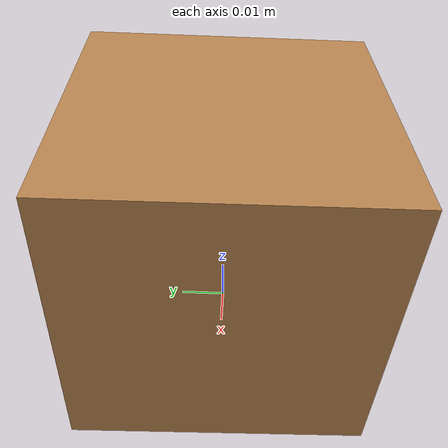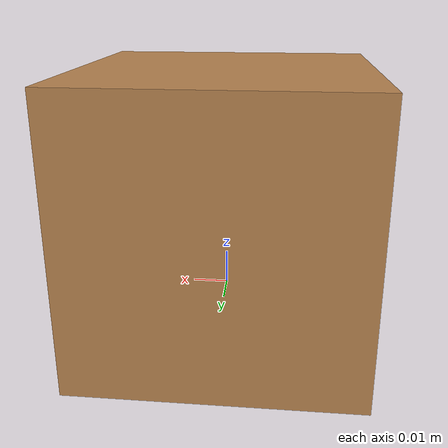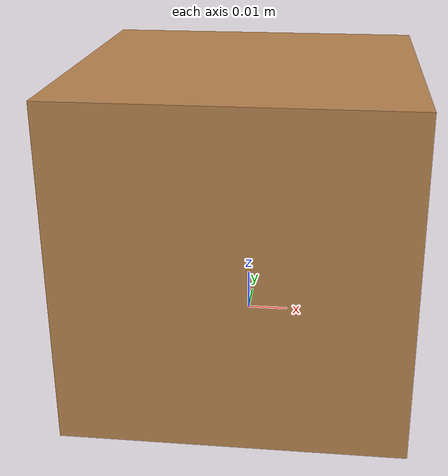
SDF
<?xml version='1.0'?>
<sdf version='1.6'>
  <model name='wood_cube_8cm'>
    <link name='link'>
      <pose frame=''>-0 -0 0.025 0 -0 0</pose>
      <inertial>
        <mass>0.0565</mass>
        <inertia>
          <ixx>2.354e-05</ixx>
          <ixy>0</ixy>
          <ixz>0</ixz>
          <iyy>2.354e-05</iyy>
          <iyz>0</iyz>
          <izz>2.354e-05</izz>
        </inertia>
        <pose frame=''>0 0 0 0 -0 0</pose>
      </inertial>
      <self_collide>0</self_collide>
      <kinematic>0</kinematic>
      <gravity>1</gravity>
      <visual name='visual'>
        <geometry>
          <box>
            <size>0.08 0.08 0.08</size>
          </box>
        </geometry>
        <material>
          <script>
            <uri>file://media/materials/scripts/gazebo.material</uri>
            <name>Gazebo/Wood</name>
          </script>
          <ambient>1 1 1 1</ambient>
          <diffuse>1 1 1 1</diffuse>
          <specular>0.2 0.2 0.2 1</specular>
          <emissive>0 0 0 1</emissive>
          <shader type='vertex'>
            <normal_map>__default__</normal_map>
          </shader>
        </material>
        <pose frame=''>0 0 0 0 -0 0</pose>
        <cast_shadows>1</cast_shadows>
        <transparency>0</transparency>
      </visual>
      <collision name='collision'>
        <laser_retro>0</laser_retro>
        <max_contacts>10</max_contacts>
        <pose frame=''>0 0 0 0 -0 0</pose>
        <geometry>
          <box>
            <size>0.08 0.08 0.08</size>
          </box>
        </geometry>
        <surface>
          <friction>
            <ode>
              <mu>2</mu>
              <mu2>2</mu2>
              <fdir1>0 0 0</fdir1>
              <slip1>0</slip1>
              <slip2>0</slip2>
            </ode>
            <torsional>
              <coefficient>1</coefficient>
              <patch_radius>0</patch_radius>
              <surface_radius>0.05</surface_radius>
              <use_patch_radius>0</use_patch_radius>
              <ode>
                <slip>0</slip>
              </ode>
            </torsional>
          </friction>
          <bounce>
            <restitution_coefficient>0</restitution_coefficient>
            <threshold>1e+06</threshold>
          </bounce>
          <contact>
            <collide_without_contact>0</collide_without_contact>
            <collide_without_contact_bitmask>1</collide_without_contact_bitmask>
            <collide_bitmask>1</collide_bitmask>
            <ode>
              <soft_cfm>0</soft_cfm>
              <soft_erp>0.2</soft_erp>
              <kp>100000</kp>
              <kd>1</kd>
              <max_vel>1</max_vel>
              <min_depth>0.001</min_depth>
            </ode>
            <bullet>
              <split_impulse>1</split_impulse>
              <split_impulse_penetration_threshold>-0.01</split_impulse_penetration_threshold>
              <soft_cfm>0</soft_cfm>
              <soft_erp>0.2</soft_erp>
              <kp>100000</kp>
              <kd>1</kd>
            </bullet>
          </contact>
        </surface>
      </collision>
    </link>
    <static>0</static>
    <allow_auto_disable>1</allow_auto_disable>
  </model>
</sdf>
